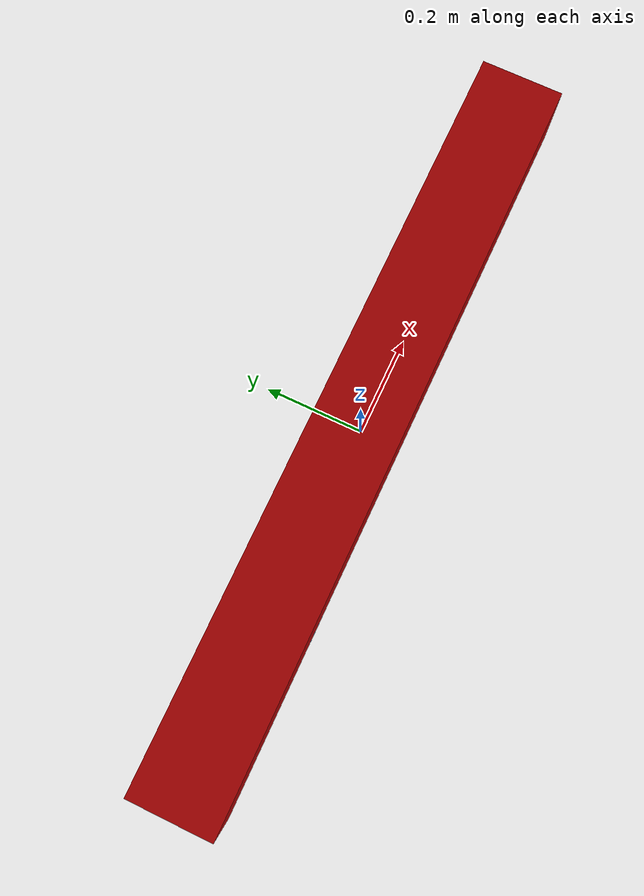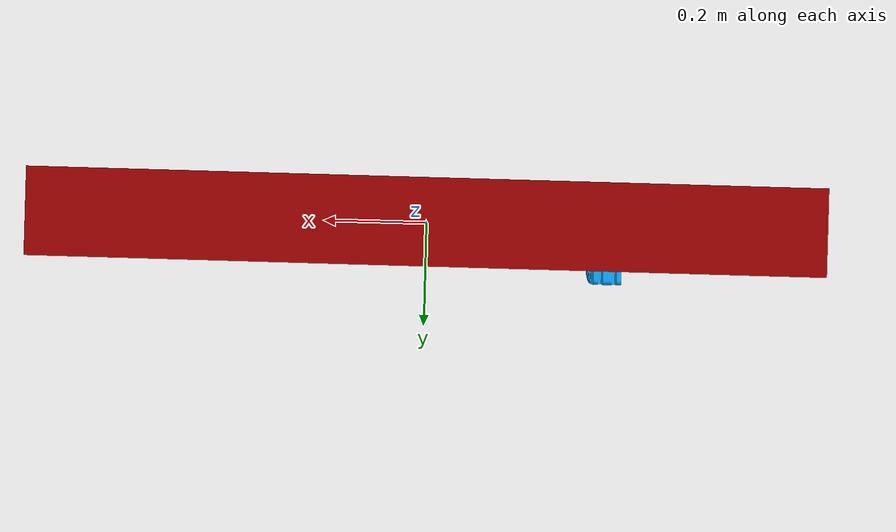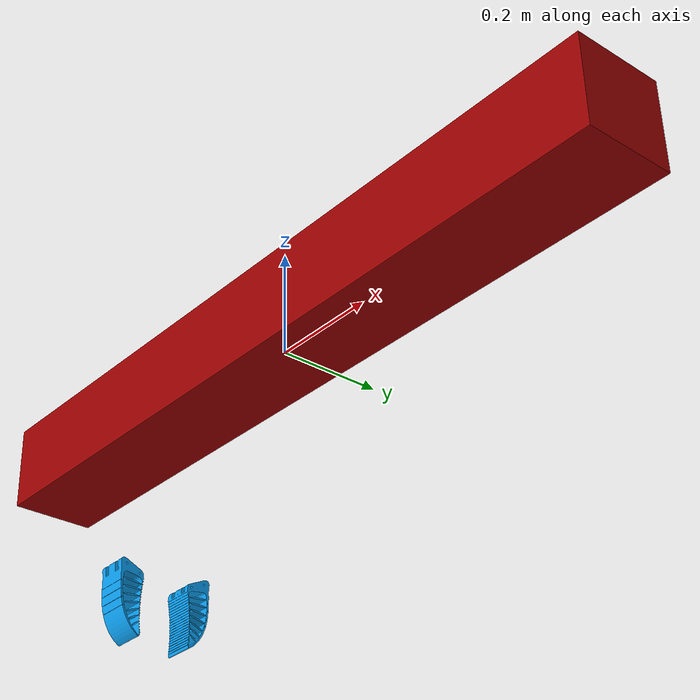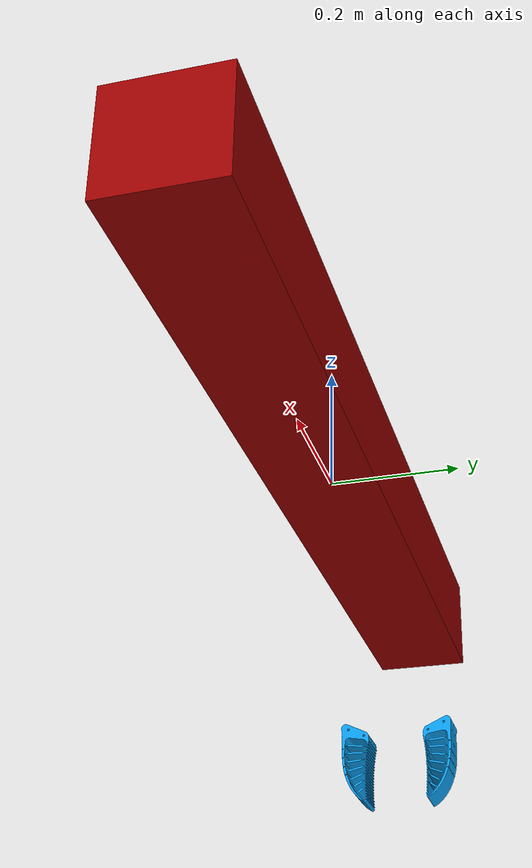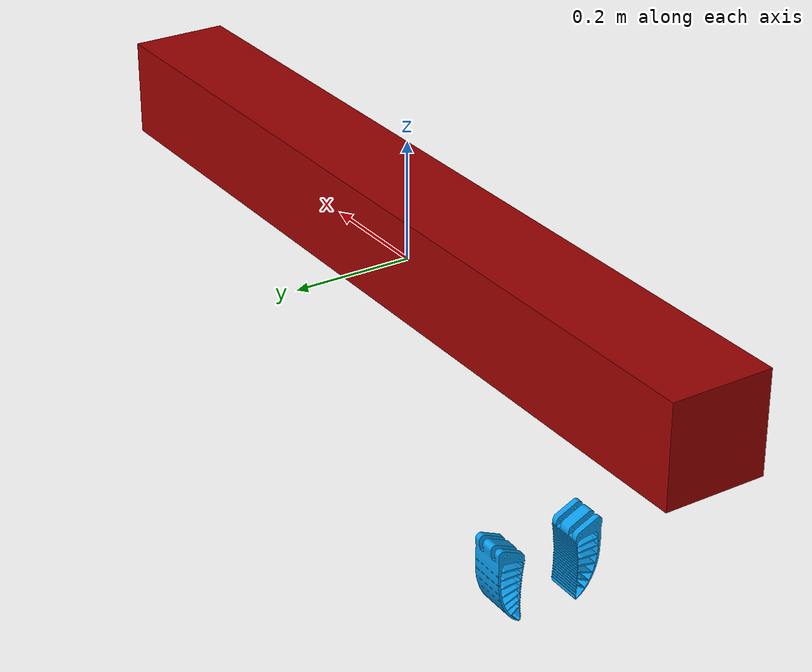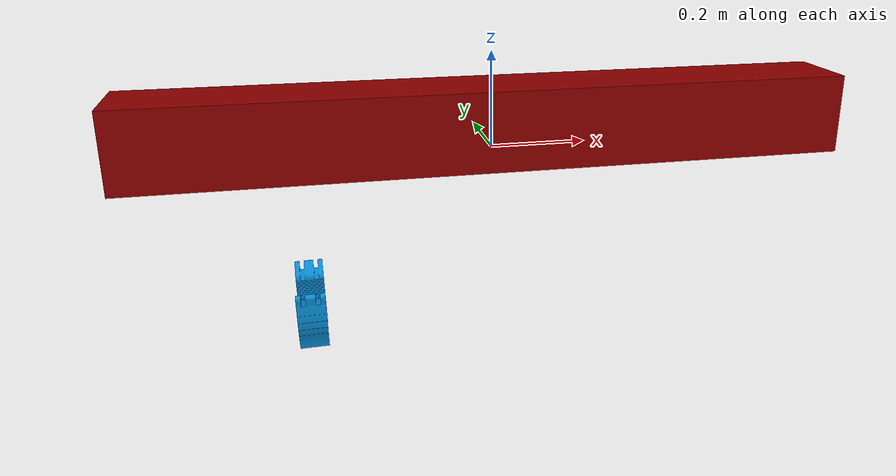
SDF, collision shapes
<?xml version="1.0"?>
<sdf version="1.8">
  <model name="m7urdfnew_sdf_package">

    <link name="base_link">

      <inertial>
        <mass>40.81837758</mass>
        <inertia>
          <ixx>1000000</ixx>  <ixy>0</ixy>  <ixz>0</ixz>
          <iyy>1000000</iyy>   <iyz>0</iyz>
          <izz>7.90</izz>
        </inertia>
      </inertial>

      <collision name="collision">
        <pose>0 0 0.05 0 0 0</pose>
        <geometry>
          <box><size>1.5 0.1665 0.1665</size></box>
        </geometry>
        <surface>
          <contact>
            <ode>
              <kp>1000000</kp><kd>100</kd>
              <max_vel>0.5</max_vel><min_depth>0.001</min_depth>
            </ode>
          </contact>
          <friction><ode><mu>0.1</mu><mu2>0.1</mu2></ode></friction>
        </surface>
      </collision>

      <sensor name="hull_contact_sensor" type="contact">
        <update_rate>30.0</update_rate>
        <always_on>true</always_on>
        <contact>
          <collision>collision</collision>
        </contact>
      </sensor>

      <visual name="m7urdfnew_sdf_package_base_link_visual_0">
        <pose>0.687 -1.259 -0.766 0 0 3.14159</pose>
        <geometry>
          <mesh>
            <uri>model://m7urdfnew_sdf_package/meshes/base_link.STL</uri>
          </mesh>
        </geometry>
        <material>
          <ambient>0.61 0 0 1</ambient>
          <diffuse>0.61 0 0 1</diffuse>
          <specular>0.1 0.1 0.1 1</specular>
        </material>
      </visual>
      <visual name="m7urdfnew_sdf_package_black_visual_0">
        <pose>0.33235 -0.2427 0.21488 -1.5708 -0.81214 1.57079</pose>
        <geometry>
          <mesh>
            <uri>model://m7urdfnew_sdf_package/meshes/black.STL</uri>
          </mesh>
        </geometry>
        <material>
          <ambient>0 0 0 1</ambient>
          <diffuse>0 0 0 1</diffuse>
          <specular>0.1 0.1 0.1 1</specular>
        </material>
      </visual>
      <visual name="m7urdfnew_sdf_package_delrin_visual_0">
        <pose>-0.3595 -0.2514 -0.20762 1.5708 0 0.785393</pose>
        <geometry>
          <mesh>
            <uri>model://m7urdfnew_sdf_package/meshes/delrin.STL</uri>
          </mesh>
        </geometry>
        <material>
          <ambient>1 1 1 1</ambient>
          <diffuse>1 1 1 1</diffuse>
          <specular>0.1 0.1 0.1 1</specular>
        </material>
      </visual>
      <visual name="m7urdfnew_sdf_package_steelbar_visual_0">
        <pose>-0.00765 0.1538 -0.01012 0 0 1.57079</pose>
        <geometry>
          <mesh>
            <uri>model://m7urdfnew_sdf_package/meshes/steelbar.STL</uri>
          </mesh>
        </geometry>
        <material>
          <ambient>0.45 0.47 0.54 1</ambient>
          <diffuse>0.45 0.47 0.54 1</diffuse>
          <specular>0.1 0.1 0.1 1</specular>
        </material>
      </visual>
      <visual name="m7urdfnew_sdf_package_transparent_visual_0">
        <pose>0.01235 -0.0007 0.19538 -1.5708 0 2.65359e-06</pose>
        <geometry>
          <mesh>
            <uri>model://m7urdfnew_sdf_package/meshes/transparent.STL</uri>
          </mesh>
        </geometry>
        <material>
          <ambient>1 1 1 0.35</ambient>
          <diffuse>1 1 1 0.35</diffuse>
          <specular>0.1 0.1 0.1 1</specular>
        </material>
      </visual>
      <visual name="m7urdfnew_sdf_package_aluminium_visual_0">
        <pose>0.29881 -0.1047 0.05038 1.5708 0 1.57079</pose>
        <geometry>
          <mesh>
            <uri>model://m7urdfnew_sdf_package/meshes/aluminium.STL</uri>
          </mesh>
        </geometry>
        <material>
          <ambient>0.3 0.3 0.3 1</ambient>
          <diffuse>0.3 0.3 0.3 1</diffuse>
          <specular>0.1 0.1 0.1 1</specular>
        </material>
      </visual>
      <visual name="m7urdfnew_sdf_package_red_handle_visual_0">
        <pose>0.24209 0.0749 0.22744 1.5708 -1.4184 2.65359e-06</pose>
        <geometry>
          <mesh>
            <uri>model://m7urdfnew_sdf_package/meshes/red handle.STL</uri>
          </mesh>
        </geometry>
        <material>
          <ambient>0.55 0.04 0.04 1</ambient>
          <diffuse>0.55 0.04 0.04 1</diffuse>
          <specular>0.1 0.1 0.1 1</specular>
        </material>
      </visual>
      <visual name="m7urdfnew_sdf_package_black_Lconector_visual_0">
        <pose>-0.05215 0.1933 -0.02517 1.5708 0 1.57079</pose>
        <geometry>
          <mesh>
            <uri>model://m7urdfnew_sdf_package/meshes/black Lconector.STL</uri>
          </mesh>
        </geometry>
        <material>
          <ambient>0.27 0.27 0.27 1</ambient>
          <diffuse>0.27 0.27 0.27 1</diffuse>
          <specular>0.1 0.1 0.1 1</specular>
        </material>
      </visual>
      <visual name="m7urdfnew_sdf_package_yellow_killswitch_visual_0">
        <pose>-0.3595 0.252 0.13638 0 0 -0.523393</pose>
        <geometry>
          <mesh>
            <uri>model://m7urdfnew_sdf_package/meshes/yellow killswitch.STL</uri>
          </mesh>
        </geometry>
        <material>
          <ambient>0.95 0.8 1 1</ambient>
          <diffuse>0.95 0.8 1 1</diffuse>
          <specular>0.1 0.1 0.1 1</specular>
        </material>
      </visual>
      <visual name="m7urdfnew_sdf_package_green_elec_visual_0">
        <pose>0.00044 0.0671 0.06738 -3.14159 0 1.57079</pose>
        <geometry>
          <mesh>
            <uri>model://m7urdfnew_sdf_package/meshes/green elec.STL</uri>
          </mesh>
        </geometry>
        <material>
          <ambient>0.02 0.44 0.24 1</ambient>
          <diffuse>0.02 0.44 0.24 1</diffuse>
          <specular>0.1 0.1 0.1 1</specular>
        </material>
      </visual>
      <visual name="m7urdfnew_sdf_package_blue_thruster_visual_0">
        <pose>-0.3595 -0.2514 0.01367 0 0 2.65359e-06</pose>
        <geometry>
          <mesh>
            <uri>model://m7urdfnew_sdf_package/meshes/blue thruster.STL</uri>
          </mesh>
        </geometry>
        <material>
          <ambient>0.38 0.4 0.45 1</ambient>
          <diffuse>0.38 0.4 0.45 1</diffuse>
          <specular>0.1 0.1 0.1 1</specular>
        </material>
      </visual>
      <visual name="m7urdfnew_sdf_package_gripper_steel_visual_0">
        <pose>-0.31265 -0.56018 -0.33016 1.5708 0 -1.57079</pose>
        <geometry>
          <mesh>
            <uri>model://m7urdfnew_sdf_package/meshes/gripper steel.STL</uri>
          </mesh>
        </geometry>
        <material>
          <ambient>0.11 0.46 0.64 1</ambient>
          <diffuse>0.11 0.46 0.64 1</diffuse>
          <specular>0.1 0.1 0.1 1</specular>
        </material>
      </visual>
      <visual name="m7urdfnew_sdf_package_gripper_aluminium_visual_0">
        <pose>-0.3471 0.014 -0.28211 1.5929 0 -1.57079</pose>
        <geometry>
          <mesh>
            <uri>model://m7urdfnew_sdf_package/meshes/gripper aluminium.STL</uri>
          </mesh>
        </geometry>
        <material>
          <ambient>0.58 0.6 0.69 1</ambient>
          <diffuse>0.58 0.6 0.69 1</diffuse>
          <specular>0.1 0.1 0.1 1</specular>
        </material>
      </visual>
      <!-- FINGERS REMOVED FROM HERE -->
      <visual name="m7urdfnew_sdf_package_light_red_visual_0">
        <pose>-0.0462984 0.163819 -0.0681183 1.5708 0 -1.57079</pose>
        <geometry>
          <mesh>
            <uri>model://m7urdfnew_sdf_package/meshes/light red.STL</uri>
          </mesh>
        </geometry>
        <material>
          <ambient>0.53 0.28 0.28 1</ambient>
          <diffuse>0.53 0.28 0.28 1</diffuse>
          <specular>0.1 0.1 0.1 1</specular>
        </material>
      </visual>

      <sensor name="imu_sensor_1" type="imu">
        <pose>0.5 0.1 0 0 0 0</pose>
        <always_on>1</always_on>
        <update_rate>30</update_rate>
        <topic>/model/auv/imu_1</topic>
        <imu>
          <angular_velocity>
            <x><noise type="gaussian"><mean>0</mean><stddev>0.05</stddev><bias_mean>0</bias_mean><bias_stddev>0.1</bias_stddev></noise></x>
            <y><noise type="gaussian"><mean>0</mean><stddev>0.05</stddev><bias_mean>0</bias_mean><bias_stddev>0.1</bias_stddev></noise></y>
            <z><noise type="gaussian"><mean>0</mean><stddev>0.05</stddev><bias_mean>0</bias_mean><bias_stddev>0.1</bias_stddev></noise></z>
          </angular_velocity>
          <linear_acceleration>
            <x><noise type="gaussian"><mean>0</mean><stddev>0.5</stddev><bias_mean>0</bias_mean><bias_stddev>0.2</bias_stddev></noise></x>
            <y><noise type="gaussian"><mean>0</mean><stddev>0.5</stddev><bias_mean>0</bias_mean><bias_stddev>0.2</bias_stddev></noise></y>
            <z><noise type="gaussian"><mean>0</mean><stddev>0.5</stddev><bias_mean>0</bias_mean><bias_stddev>0.2</bias_stddev></noise></z>
          </linear_acceleration>
        </imu>
      </sensor>

      <sensor name="front_camera" type="rgbd_camera">
        <pose>1.5 0 0.5 0 0 0</pose>
        <topic>/model/auv/front_camera</topic>
        <camera>
          <horizontal_fov>1.487</horizontal_fov>
          <image>
            <width>700</width>
            <height>400</height>
            <format>R8G8B8</format>
          </image>
          <clip><near>0.1</near><far>30</far></clip>
        </camera>
        <always_on>1</always_on>
        <update_rate>15</update_rate>
        <visualize>false</visualize>
      </sensor>

      <!-- Halved alongside the front camera; f_sim 752.59 -> 376.30. -->
      <sensor name="bottom_camera" type="camera">
        <pose>0 0 -0.3 0 1.5708 0</pose>
        <topic>/model/auv/bottom_camera/image</topic>
        <camera>
          <horizontal_fov>1.500</horizontal_fov>
          <image>
            <width>700</width>
            <height>400</height>
            <format>R8G8B8</format>
          </image>
          <clip><near>0.05</near><far>50</far></clip>
        </camera>
        <always_on>1</always_on>
        <update_rate>15</update_rate>
        <visualize>false</visualize>
      </sensor>
    </link>

    <plugin filename="ignition-gazebo-hydrodynamics-system"
            name="ignition::gazebo::systems::Hydrodynamics">
      <link_name>base_link</link_name>

      <xDotU>-0.196</xDotU>
      <yDotV>-9.31</yDotV>
      <zDotW>-9.31</zDotW>
      <kDotP>-0.1</kDotP>
      <mDotQ>-1.84</mDotQ>
      <nDotR>-1.84</nDotR>

      <xU>-130.7</xU>
      <yV>-116.0</yV>
      <zW>-116.0</zW>
      <kP>-9.5</kP>
      <mQ>-9.50</mQ>
      <nR>-9.50</nR>

      <xUabsU>-14.5</xUabsU>
      <yVabsV>-216.0</yVabsV>
      <zWabsW>-350.0</zWabsW>
      <kPabsP>-2.0  </kPabsP>
      <mQabsQ>-18.0</mQabsQ>
      <nRabsR>-18.0</nRabsR>

    </plugin>

    <plugin filename="ignition-gazebo-pose-publisher-system"
            name="ignition::gazebo::systems::PosePublisher">
      <publish_link_pose>true</publish_link_pose>
      <publish_sensor_pose>false</publish_sensor_pose>
      <publish_collision_pose>false</publish_collision_pose>
      <publish_visual_pose>false</publish_visual_pose>
      <link_name>base_link</link_name>
      <use_pose_vector_msg>true</use_pose_vector_msg>
      <update_frequency>20</update_frequency>
      <frame_id>world</frame_id>
    </plugin>

    <plugin filename="ignition-gazebo-odometry-publisher-system"
            name="ignition::gazebo::systems::OdometryPublisher">
      <odom_frame>odom</odom_frame>
      <robot_base_frame>base_link</robot_base_frame>
      <dimensions>3</dimensions>
      <degrees>true</degrees>
      <publish_odometry>true</publish_odometry>
      <publish_tf>true</publish_tf>
      <update_frequency>20</update_frequency>
    </plugin>

    <link name="surge_front_left_link">
      <pose>0.402 -0.244 0.0 0.0 0.0 0.785</pose>
      <inertial>
        <mass>0.001</mass>
        <inertia><ixx>0.0001</ixx><ixy>0</ixy><ixz>0</ixz><iyy>0.0001</iyy><iyz>0</iyz><izz>0.0001</izz></inertia>
      </inertial>
    </link>
    <joint name="surge_front_left_joint" type="revolute">
      <parent>base_link</parent>
      <child>surge_front_left_link</child>
      <axis>
        <xyz expressed_in="__model__">0.707 -0.707 0</xyz>
        <limit><lower>-1e16</lower><upper>1e16</upper></limit>
      </axis>
    </joint>
    <plugin filename="ignition-gazebo-thruster-system" name="ignition::gazebo::systems::Thruster">
      <joint_name>surge_front_left_joint</joint_name>
      <thrust_coefficient>0.0001</thrust_coefficient>
      <fluid_density>1000</fluid_density>
      <propeller_diameter>0.1</propeller_diameter>
      <!-- See the note above the first thruster: without this the plugin
           runs its propeller PID and torques the hull. -->
      <velocity_control>true</velocity_control>
    </plugin>

    <link name="surge_front_right_link">
      <pose>0.402 0.244 0.0 0.0 0.0 -0.785</pose>
      <inertial>
        <mass>0.001</mass>
        <inertia><ixx>0.0001</ixx><ixy>0</ixy><ixz>0</ixz><iyy>0.0001</iyy><iyz>0</iyz><izz>0.0001</izz></inertia>
      </inertial>
    </link>
    <joint name="surge_front_right_joint" type="revolute">
      <parent>base_link</parent>
      <child>surge_front_right_link</child>
      <axis>
        <xyz expressed_in="__model__">0.707 0.707 0</xyz>
        <limit><lower>-1e16</lower><upper>1e16</upper></limit>
      </axis>
    </joint>
    <plugin filename="ignition-gazebo-thruster-system" name="ignition::gazebo::systems::Thruster">
      <joint_name>surge_front_right_joint</joint_name>
      <thrust_coefficient>0.0001</thrust_coefficient>
      <fluid_density>1000</fluid_density>
      <propeller_diameter>0.1</propeller_diameter>
      <!-- See the note above the first thruster: without this the plugin
           runs its propeller PID and torques the hull. -->
      <velocity_control>true</velocity_control>
    </plugin>

    <link name="surge_back_left_link">
      <pose>-0.402 -0.244 0.0 0.0 0.0 -0.785</pose>
      <inertial>
        <mass>0.001</mass>
        <inertia><ixx>0.0001</ixx><ixy>0</ixy><ixz>0</ixz><iyy>0.0001</iyy><iyz>0</iyz><izz>0.0001</izz></inertia>
      </inertial>
    </link>
    <joint name="surge_back_left_joint" type="revolute">
      <parent>base_link</parent>
      <child>surge_back_left_link</child>
      <axis>
        <xyz expressed_in="__model__">0.707 0.707 0</xyz>
        <limit><lower>-1e16</lower><upper>1e16</upper></limit>
      </axis>
    </joint>
    <plugin filename="ignition-gazebo-thruster-system" name="ignition::gazebo::systems::Thruster">
      <joint_name>surge_back_left_joint</joint_name>
      <thrust_coefficient>0.0001</thrust_coefficient>
      <fluid_density>1000</fluid_density>
      <propeller_diameter>0.1</propeller_diameter>
      <!-- See the note above the first thruster: without this the plugin
           runs its propeller PID and torques the hull. -->
      <velocity_control>true</velocity_control>
    </plugin>

    <link name="surge_back_right_link">
      <pose>-0.402 0.244 0.0 0.0 0.0 0.785</pose>
      <inertial>
        <mass>0.001</mass>
        <inertia><ixx>0.0001</ixx><ixy>0</ixy><ixz>0</ixz><iyy>0.0001</iyy><iyz>0</iyz><izz>0.0001</izz></inertia>
      </inertial>
    </link>
    <joint name="surge_back_right_joint" type="revolute">
      <parent>base_link</parent>
      <child>surge_back_right_link</child>
      <axis>
        <xyz expressed_in="__model__">0.707 -0.707 0</xyz>
        <limit><lower>-1e16</lower><upper>1e16</upper></limit>
      </axis>
    </joint>
    <plugin filename="ignition-gazebo-thruster-system" name="ignition::gazebo::systems::Thruster">
      <joint_name>surge_back_right_joint</joint_name>
      <thrust_coefficient>0.0001</thrust_coefficient>
      <fluid_density>1000</fluid_density>
      <propeller_diameter>0.1</propeller_diameter>
      <!-- See the note above the first thruster: without this the plugin
           runs its propeller PID and torques the hull. -->
      <velocity_control>true</velocity_control>
    </plugin>

    <link name="heave_front_left_link">
      <pose>0.226 -0.301 0.0 0.0 1.57 0.0</pose>
      <inertial>
        <mass>0.001</mass>
        <inertia><ixx>0.0001</ixx><ixy>0</ixy><ixz>0</ixz><iyy>0.0001</iyy><iyz>0</iyz><izz>0.0001</izz></inertia>
      </inertial>
    </link>
    <joint name="heave_front_left_joint" type="revolute">
      <parent>base_link</parent>
      <child>heave_front_left_link</child>
      <axis>
        <xyz expressed_in="__model__">0 0 1</xyz>
        <limit><lower>-1e16</lower><upper>1e16</upper></limit>
      </axis>
    </joint>
    <plugin filename="ignition-gazebo-thruster-system" name="ignition::gazebo::systems::Thruster">
      <joint_name>heave_front_left_joint</joint_name>
      <thrust_coefficient>0.0001</thrust_coefficient>
      <fluid_density>1000</fluid_density>
      <propeller_diameter>0.1</propeller_diameter>
      <!-- See the note above the first thruster: without this the plugin
           runs its propeller PID and torques the hull. -->
      <velocity_control>true</velocity_control>
    </plugin>

    <link name="heave_front_right_link">
      <pose>0.226 0.301 0.0 0.0 1.57 0.0</pose>
      <inertial>
        <mass>0.001</mass>
        <inertia><ixx>0.0001</ixx><ixy>0</ixy><ixz>0</ixz><iyy>0.0001</iyy><iyz>0</iyz><izz>0.0001</izz></inertia>
      </inertial>
    </link>
    <joint name="heave_front_right_joint" type="revolute">
      <parent>base_link</parent>
      <child>heave_front_right_link</child>
      <axis>
        <xyz expressed_in="__model__">0 0 1</xyz>
        <limit><lower>-1e16</lower><upper>1e16</upper></limit>
      </axis>
    </joint>
    <plugin filename="ignition-gazebo-thruster-system" name="ignition::gazebo::systems::Thruster">
      <joint_name>heave_front_right_joint</joint_name>
      <thrust_coefficient>0.0001</thrust_coefficient>
      <fluid_density>1000</fluid_density>
      <propeller_diameter>0.1</propeller_diameter>
      <!-- See the note above the first thruster: without this the plugin
           runs its propeller PID and torques the hull. -->
      <velocity_control>true</velocity_control>
    </plugin>

    <link name="heave_back_left_link">
      <pose>-0.226 -0.301 0.0 0.0 1.57 0.0</pose>
      <inertial>
        <mass>0.001</mass>
        <inertia><ixx>0.0001</ixx><ixy>0</ixy><ixz>0</ixz><iyy>0.0001</iyy><iyz>0</iyz><izz>0.0001</izz></inertia>
      </inertial>
    </link>
    <joint name="heave_back_left_joint" type="revolute">
      <parent>base_link</parent>
      <child>heave_back_left_link</child>
      <axis>
        <xyz expressed_in="__model__">0 0 1</xyz>
        <limit><lower>-1e16</lower><upper>1e16</upper></limit>
      </axis>
    </joint>
    <plugin filename="ignition-gazebo-thruster-system" name="ignition::gazebo::systems::Thruster">
      <joint_name>heave_back_left_joint</joint_name>
      <thrust_coefficient>0.0001</thrust_coefficient>
      <fluid_density>1000</fluid_density>
      <propeller_diameter>0.1</propeller_diameter>
      <!-- See the note above the first thruster: without this the plugin
           runs its propeller PID and torques the hull. -->
      <velocity_control>true</velocity_control>
    </plugin>

    <link name="heave_back_right_link">
      <pose>-0.226 0.301 0.0 0.0 1.57 0.0</pose>
      <inertial>
        <mass>0.001</mass>
        <inertia><ixx>0.0001</ixx><ixy>0</ixy><ixz>0</ixz><iyy>0.0001</iyy><iyz>0</iyz><izz>0.0001</izz></inertia>
      </inertial>
    </link>
    <joint name="heave_back_right_joint" type="revolute">
      <parent>base_link</parent>
      <child>heave_back_right_link</child>
      <axis>
        <xyz expressed_in="__model__">0 0 1</xyz>
        <limit><lower>-1e16</lower><upper>1e16</upper></limit>
      </axis>
    </joint>
    <plugin filename="ignition-gazebo-thruster-system" name="ignition::gazebo::systems::Thruster">
      <joint_name>heave_back_right_joint</joint_name>
      <thrust_coefficient>0.0001</thrust_coefficient>
      <fluid_density>1000</fluid_density>
      <propeller_diameter>0.1</propeller_diameter>
      <!-- See the note above the first thruster: without this the plugin
           runs its propeller PID and torques the hull. -->
      <velocity_control>true</velocity_control>
    </plugin>

    <plugin filename="ignition-gazebo-detachable-joint-system"
            name="ignition::gazebo::systems::DetachableJoint">
      <parent_link>base_link</parent_link>
      <child_model>marker_left</child_model>
      <child_link>payload_link</child_link>
      <detach_topic>/model/auv/joint/marker_left_joint/detach</detach_topic>
      <attach_topic>/model/auv/joint/marker_left_joint/attach</attach_topic>
      <output_topic>/model/auv/joint/marker_left_joint/state</output_topic>
    </plugin>

    <plugin filename="ignition-gazebo-detachable-joint-system"
            name="ignition::gazebo::systems::DetachableJoint">
      <parent_link>base_link</parent_link>
      <child_model>torpedo_left</child_model>
      <child_link>payload_link</child_link>
      <detach_topic>/model/auv/joint/torpedo_left_joint/detach</detach_topic>
      <attach_topic>/model/auv/joint/torpedo_left_joint/attach</attach_topic>
      <output_topic>/model/auv/joint/torpedo_left_joint/state</output_topic>
    </plugin>

    <!-- NEW FINGER LINKS AND JOINTS ADDED HERE -->
    <link name="left_finger_link">
      <inertial>
        <mass>0.1</mass>
        <inertia>
          <ixx>0.0001</ixx><ixy>0</ixy><ixz>0</ixz>
          <iyy>0.0001</iyy><iyz>0</iyz>
          <izz>0.0001</izz>
        </inertia>
      </inertial>
      <visual name="left_finger_visual">
        <pose>-0.3918 0.0667 -0.41806 1.5932 0.16115 -1.56719</pose>
        <geometry>
          <mesh>
            <uri>model://m7urdfnew_sdf_package/meshes/fingre blue left.stl</uri>
          </mesh>
        </geometry>
        <material>
          <ambient>0.04 0.61 0.92 1</ambient>
          <diffuse>0.04 0.61 0.92 1</diffuse>
          <specular>0.1 0.1 0.1 1</specular>
        </material>
      </visual>
      <collision name="left_finger_collision">
        <pose>-0.3918 0.0667 -0.41806 1.5932 0.16115 -1.56719</pose>
        <geometry>
          <mesh>
            <uri>model://m7urdfnew_sdf_package/meshes/fingre blue left.stl</uri>
          </mesh>
        </geometry>
      </collision>
      <sensor name="left_finger_contact_sensor" type="contact">
        <update_rate>30.0</update_rate>
        <always_on>true</always_on>
        <contact>
          <collision>left_finger_collision</collision>
        </contact>
      </sensor>
    </link>

    <joint name="left_finger_joint" type="revolute">
      <parent>base_link</parent>
      <child>left_finger_link</child>
      <!-- Adjust this pose to accurately reflect the mechanical pivot point -->
      <pose>-0.4021 0.1000 -0.2831 0 0 0</pose>
      <axis>
        <xyz>1 0 0</xyz>
        <limit>
          <lower>-0.5</lower>
          <upper>0.0</upper>
          <effort>10.0</effort>
          <velocity>1.0</velocity>
        </limit>
      </axis>
    </joint>

    <link name="right_finger_link">
      <inertial>
        <mass>0.1</mass>
        <inertia>
          <ixx>0.0001</ixx><ixy>0</ixy><ixz>0</ixz>
          <iyy>0.0001</iyy><iyz>0</iyz>
          <izz>0.0001</izz>
        </inertia>
      </inertial>
      <visual name="right_finger_visual">
        <pose>-0.3918 0.0667 -0.41806 1.5932 0.16115 -1.56719</pose>
        <geometry>
          <mesh>
            <uri>model://m7urdfnew_sdf_package/meshes/fingre blue right.stl</uri>
          </mesh>
        </geometry>
        <material>
          <ambient>0.04 0.61 0.92 1</ambient>
          <diffuse>0.04 0.61 0.92 1</diffuse>
          <specular>0.1 0.1 0.1 1</specular>
        </material>
      </visual>
      <collision name="right_finger_collision">
        <pose>-0.3918 0.0667 -0.41806 1.5932 0.16115 -1.56719</pose>
        <geometry>
          <mesh>
            <uri>model://m7urdfnew_sdf_package/meshes/fingre blue right.stl</uri>
          </mesh>
        </geometry>
      </collision>
      <sensor name="right_finger_contact_sensor" type="contact">
        <update_rate>30.0</update_rate> <!-- Checks 30 times a second -->
        <always_on>true</always_on>
        <contact>
          <collision>right_finger_collision</collision>
        </contact>
      </sensor>
    </link>

    <joint name="right_finger_joint" type="revolute">
      <parent>base_link</parent>
      <child>right_finger_link</child>
      <!-- Adjust this pose to accurately reflect the mechanical pivot point -->
      <pose>-0.4021 -0.0667 -0.2831 0 0 0</pose>
      <axis>
        <xyz>1 0 0</xyz>
        <limit>
          <lower>0.0</lower>
          <upper>0.5</upper>
          <effort>10.0</effort>
          <velocity>1.0</velocity>
        </limit>
      </axis>
    </joint>

    <plugin filename="gz-sim-detachable-joint-system"
            name="gz::sim::systems::DetachableJoint">
      <parent_link>base_link</parent_link>
      <child_model>test_box</child_model>
      <child_link>box_link</child_link>
      <detach_topic>/model/auv/joint/gripper_test_box_joint/detach</detach_topic>
      <attach_topic>/model/auv/joint/gripper_test_box_joint/attach</attach_topic>
      <output_topic>/model/auv/joint/gripper_test_box_joint/state</output_topic>
      <suppress_child_warning>true</suppress_child_warning>
    </plugin>

    <plugin filename="gz-sim-detachable-joint-system"
            name="gz::sim::systems::DetachableJoint">
      <parent_link>base_link</parent_link>
      <child_model>pickup_bandaid</child_model>
      <child_link>pickup_link</child_link>
      <detach_topic>/model/auv/joint/gripper_pickup_bandaid_joint/detach</detach_topic>
      <attach_topic>/model/auv/joint/gripper_pickup_bandaid_joint/attach</attach_topic>
      <output_topic>/model/auv/joint/gripper_pickup_bandaid_joint/state</output_topic>
      <suppress_child_warning>true</suppress_child_warning>
    </plugin>

    <plugin filename="gz-sim-detachable-joint-system"
            name="gz::sim::systems::DetachableJoint">
      <parent_link>base_link</parent_link>
      <child_model>pickup_plug</child_model>
      <child_link>pickup_link</child_link>
      <detach_topic>/model/auv/joint/gripper_pickup_plug_joint/detach</detach_topic>
      <attach_topic>/model/auv/joint/gripper_pickup_plug_joint/attach</attach_topic>
      <output_topic>/model/auv/joint/gripper_pickup_plug_joint/state</output_topic>
      <suppress_child_warning>true</suppress_child_warning>
    </plugin>

    <plugin filename="gz-sim-detachable-joint-system"
            name="gz::sim::systems::DetachableJoint">
      <parent_link>base_link</parent_link>
      <child_model>pickup_capsule</child_model>
      <child_link>pickup_link</child_link>
      <detach_topic>/model/auv/joint/gripper_pickup_capsule_joint/detach</detach_topic>
      <attach_topic>/model/auv/joint/gripper_pickup_capsule_joint/attach</attach_topic>
      <output_topic>/model/auv/joint/gripper_pickup_capsule_joint/state</output_topic>
      <suppress_child_warning>true</suppress_child_warning>
    </plugin>

    <plugin filename="gz-sim-detachable-joint-system"
            name="gz::sim::systems::DetachableJoint">
      <parent_link>base_link</parent_link>
      <child_model>pickup_screw</child_model>
      <child_link>pickup_link</child_link>
      <detach_topic>/model/auv/joint/gripper_pickup_screw_joint/detach</detach_topic>
      <attach_topic>/model/auv/joint/gripper_pickup_screw_joint/attach</attach_topic>
      <output_topic>/model/auv/joint/gripper_pickup_screw_joint/state</output_topic>
      <suppress_child_warning>true</suppress_child_warning>
    </plugin>

    <plugin
    filename="gz-sim-joint-position-controller-system"
    name="gz::sim::systems::JointPositionController">

    <joint_name>right_finger_joint</joint_name>

    <!-- PID Controller Gains -->
    <p_gain>10.0</p_gain>
    <i_gain>0.1</i_gain>
    <d_gain>0.01</d_gain>
    <i_max>1.0</i_max>
    <i_min>-1.0</i_min>
    <cmd_max>1000</cmd_max>
    <cmd_min>-1000</cmd_min>
  </plugin>

  <plugin
    filename="gz-sim-joint-position-controller-system"
    name="gz::sim::systems::JointPositionController">

    <joint_name>left_finger_joint</joint_name>

    <!-- PID Controller Gains -->
    <p_gain>10.0</p_gain>
    <i_gain>0.1</i_gain>
    <d_gain>0.01</d_gain>
    <i_max>1.0</i_max>
    <i_min>-1.0</i_min>
    <cmd_max>1000</cmd_max>
    <cmd_min>-1000</cmd_min>
  </plugin>
  <plugin
    filename="gz-sim-contact-system"
    name="gz::sim::systems::Contact">
  </plugin>
  </model>
</sdf>
